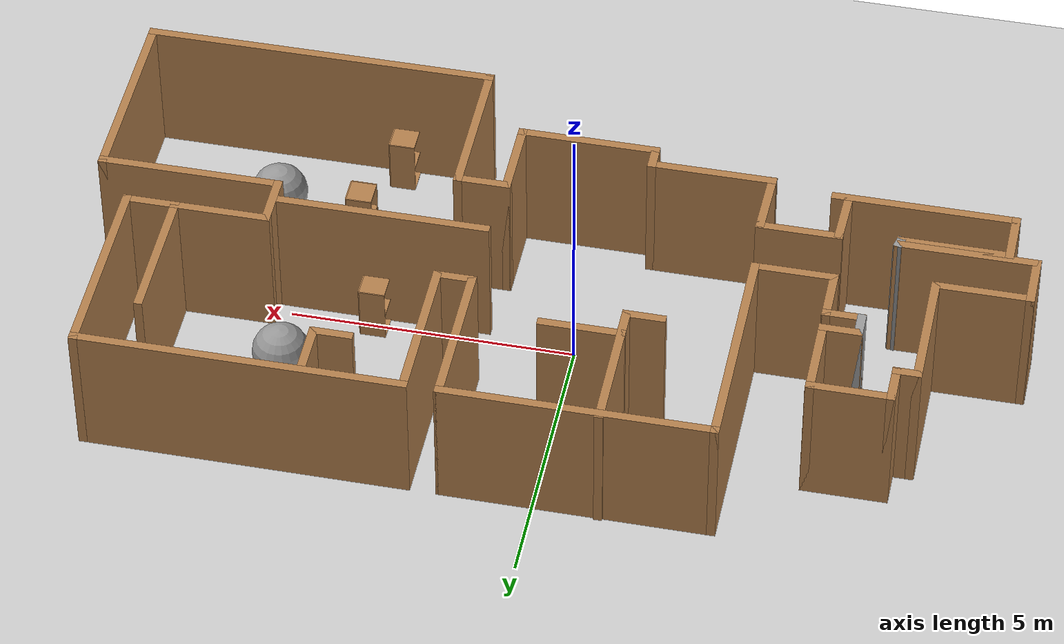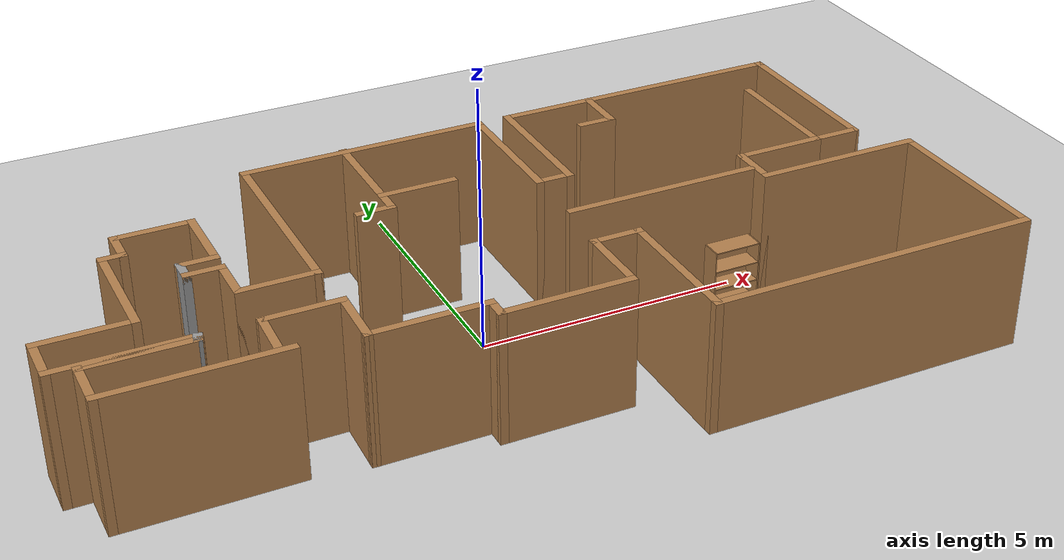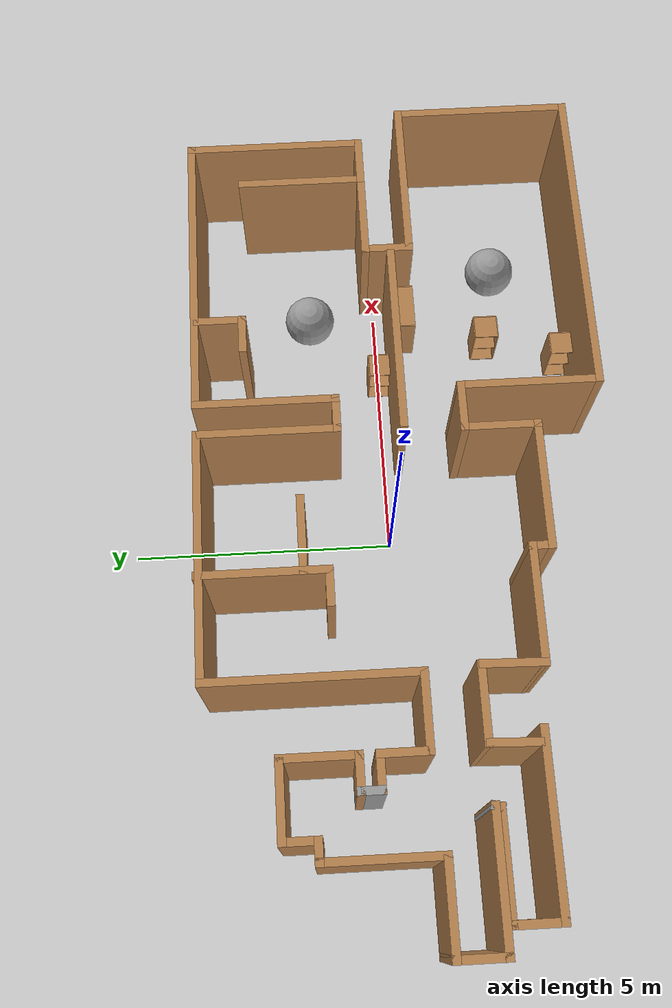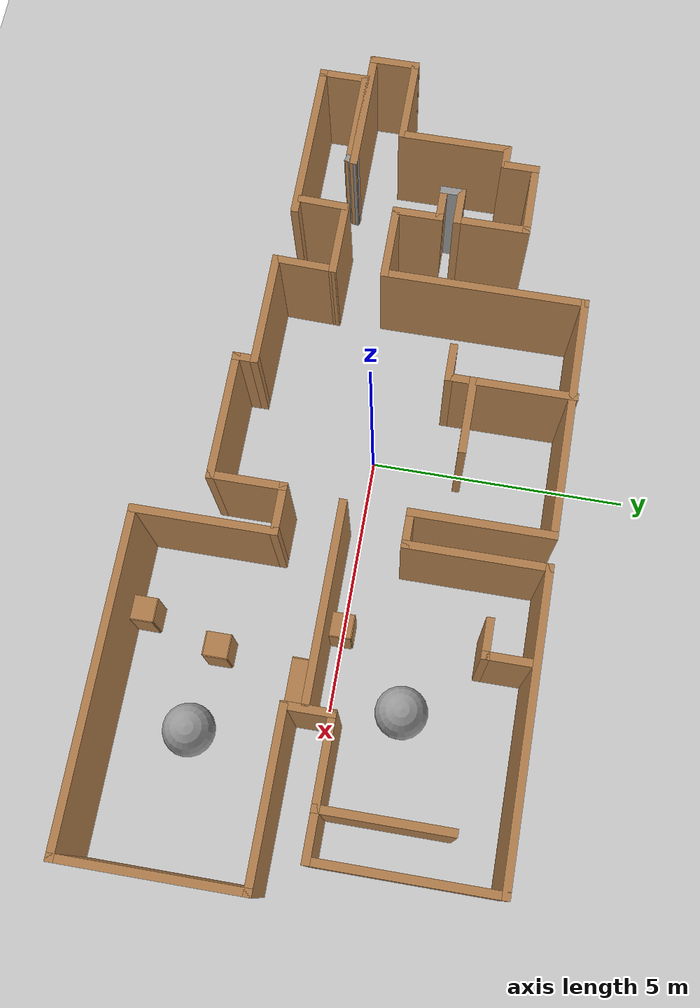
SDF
<sdf version="1.6">
 <world name="default">
  <model name="ground_plane">
   <static>1</static>
   <link name="link">
    <collision name="collision">
     <geometry><plane><normal>0 0 1</normal><size>100 100</size></plane></geometry>
     <surface><friction><ode><mu>100</mu><mu2>50</mu2></ode></friction></surface>
    </collision>
    <visual name="visual">
     <cast_shadows>0</cast_shadows>
     <geometry><plane><normal>0 0 1</normal><size>100 100</size></plane></geometry>
     <material>
      <script><uri>file://media/materials/scripts/gazebo.material</uri><name>Gazebo/Grey</name></script>
     </material>
    </visual>
   </link>
  </model>
  <model name="map_8">
   <pose>0.358533 -0.196859 0 0 -0 0</pose>
   <link name="Wall_0">
    <collision name="Wall_0_Collision">
     <geometry><box><size>3.25 0.15 2.5</size></box></geometry>
     <pose>0 0 1.25 0 -0 0</pose>
    </collision>
    <visual name="Wall_0_Visual">
     <pose>0 0 1.25 0 -0 0</pose>
     <geometry><box><size>3.25 0.15 2.5</size></box></geometry>
     <material>
      <script><uri>file://media/materials/scripts/gazebo.material</uri><name>Gazebo/Wood</name></script>
      <ambient>1 1 1 1</ambient>
     </material>
     <meta><layer>0</layer></meta>
    </visual>
    <pose>-6.02588 -2.03852 0 0 -0 3.14159</pose>
   </link>
   <link name="Wall_1">
    <collision name="Wall_1_Collision">
     <geometry><box><size>1 0.15 2.5</size></box></geometry>
     <pose>0 0 1.25 0 -0 0</pose>
    </collision>
    <visual name="Wall_1_Visual">
     <pose>0 0 1.25 0 -0 0</pose>
     <geometry><box><size>1 0.15 2.5</size></box></geometry>
     <material>
      <script><uri>file://media/materials/scripts/gazebo.material</uri><name>Gazebo/Wood</name></script>
      <ambient>1 1 1 1</ambient>
     </material>
     <meta><layer>0</layer></meta>
    </visual>
    <pose>-7.57588 -1.61352 0 0 -0 1.5708</pose>
   </link>
   <link name="Wall_10">
    <collision name="Wall_10_Collision">
     <geometry><box><size>1.5 0.15 2.5</size></box></geometry>
     <pose>0 0 1.25 0 -0 0</pose>
    </collision>
    <visual name="Wall_10_Visual">
     <pose>0 0 1.25 0 -0 0</pose>
     <geometry><box><size>1.5 0.15 2.5</size></box></geometry>
     <material>
      <script><uri>file://media/materials/scripts/gazebo.material</uri><name>Gazebo/Wood</name></script>
      <ambient>1 1 1 1</ambient>
     </material>
     <meta><layer>0</layer></meta>
    </visual>
    <pose>-5.425 2.45807 0 0 -0 0</pose>
   </link>
   <link name="Wall_11">
    <collision name="Wall_11_Collision">
     <geometry><box><size>1.5 0.15 2.5</size></box></geometry>
     <pose>0 0 1.25 0 -0 0</pose>
    </collision>
    <visual name="Wall_11_Visual">
     <pose>0 0 1.25 0 -0 0</pose>
     <geometry><box><size>1.5 0.15 2.5</size></box></geometry>
     <material>
      <script><uri>file://media/materials/scripts/gazebo.material</uri><name>Gazebo/Wood</name></script>
      <ambient>1 1 1 1</ambient>
     </material>
     <meta><layer>0</layer></meta>
    </visual>
    <pose>-4.75 1.78307 0 0 -0 -1.5708</pose>
   </link>
   <link name="Wall_12">
    <collision name="Wall_12_Collision">
     <geometry><box><size>0.75 0.15 2.5</size></box></geometry>
     <pose>0 0 1.25 0 -0 0</pose>
    </collision>
    <visual name="Wall_12_Visual">
     <pose>0 0 1.25 0 -0 0</pose>
     <geometry><box><size>0.75 0.15 2.5</size></box></geometry>
     <material>
      <script><uri>file://media/materials/scripts/gazebo.material</uri><name>Gazebo/Wood</name></script>
      <ambient>1 1 1 1</ambient>
     </material>
     <meta><layer>0</layer></meta>
    </visual>
    <pose>-5.05 1.10807 0 0 -0 3.14159</pose>
   </link>
   <link name="Wall_13">
    <collision name="Wall_13_Collision">
     <geometry><box><size>0.5 0.15 2.5</size></box></geometry>
     <pose>0 0 1.25 0 -0 0</pose>
    </collision>
    <visual name="Wall_13_Visual">
     <pose>0 0 1.25 0 -0 0</pose>
     <geometry><box><size>0.5 0.15 2.5</size></box></geometry>
     <material>
      <script><uri>file://media/materials/scripts/gazebo.material</uri><name>Gazebo/Grey</name></script>
      <ambient>1 1 1 1</ambient>
     </material>
     <meta><layer>0</layer></meta>
    </visual>
    <pose>-5.35 0.933071 0 0 -0 -1.5708</pose>
   </link>
   <link name="Wall_14">
    <collision name="Wall_14_Collision">
     <geometry><box><size>0.75 0.15 2.5</size></box></geometry>
     <pose>0 0 1.25 0 -0 0</pose>
    </collision>
    <visual name="Wall_14_Visual">
     <pose>0 0 1.25 0 -0 0</pose>
     <geometry><box><size>0.75 0.15 2.5</size></box></geometry>
     <material>
      <script><uri>file://media/materials/scripts/gazebo.material</uri><name>Gazebo/Wood</name></script>
      <ambient>1 1 1 1</ambient>
     </material>
     <meta><layer>0</layer></meta>
    </visual>
    <pose>-5.05 0.758071 0 0 -0 0</pose>
   </link>
   <link name="Wall_15">
    <collision name="Wall_15_Collision">
     <geometry><box><size>1 0.15 2.5</size></box></geometry>
     <pose>0 0 1.25 0 -0 0</pose>
    </collision>
    <visual name="Wall_15_Visual">
     <pose>0 0 1.25 0 -0 0</pose>
     <geometry><box><size>1 0.15 2.5</size></box></geometry>
     <material>
      <script><uri>file://media/materials/scripts/gazebo.material</uri><name>Gazebo/Wood</name></script>
      <ambient>1 1 1 1</ambient>
     </material>
     <meta><layer>0</layer></meta>
    </visual>
    <pose>-4.75 0.333071 0 0 -0 -1.5708</pose>
   </link>
   <link name="Wall_16">
    <collision name="Wall_16_Collision">
     <geometry><box><size>1.5 0.15 2.5</size></box></geometry>
     <pose>0 0 1.25 0 -0 0</pose>
    </collision>
    <visual name="Wall_16_Visual">
     <pose>0 0 1.25 0 -0 0</pose>
     <geometry><box><size>1.5 0.15 2.5</size></box></geometry>
     <material>
      <script><uri>file://media/materials/scripts/gazebo.material</uri><name>Gazebo/Wood</name></script>
      <ambient>1 1 1 1</ambient>
     </material>
     <meta><layer>0</layer></meta>
    </visual>
    <pose>-4.075 -0.091929 0 0 -0 0</pose>
   </link>
   <link name="Wall_17">
    <collision name="Wall_17_Collision">
     <geometry><box><size>4 0.15 2.5</size></box></geometry>
     <pose>0 0 1.25 0 -0 0</pose>
    </collision>
    <visual name="Wall_17_Visual">
     <pose>0 0 1.25 0 -0 0</pose>
     <geometry><box><size>4 0.15 2.5</size></box></geometry>
     <material>
      <script><uri>file://media/materials/scripts/gazebo.material</uri><name>Gazebo/Wood</name></script>
      <ambient>1 1 1 1</ambient>
     </material>
     <meta><layer>0</layer></meta>
    </visual>
    <pose>-3.4 1.83307 0 0 -0 1.5708</pose>
   </link>
   <link name="Wall_18">
    <collision name="Wall_18_Collision">
     <geometry><box><size>4.75 0.15 2.5</size></box></geometry>
     <pose>0 0 1.25 0 -0 0</pose>
    </collision>
    <visual name="Wall_18_Visual">
     <pose>0 0 1.25 0 -0 0</pose>
     <geometry><box><size>4.75 0.15 2.5</size></box></geometry>
     <material>
      <script><uri>file://media/materials/scripts/gazebo.material</uri><name>Gazebo/Wood</name></script>
      <ambient>1 1 1 1</ambient>
     </material>
     <meta><layer>0</layer></meta>
    </visual>
    <pose>-1.1 3.75807 0 0 -0 0</pose>
   </link>
   <link name="Wall_19">
    <collision name="Wall_19_Collision">
     <geometry><box><size>2.75 0.15 2.5</size></box></geometry>
     <pose>0 0 1.25 0 -0 0</pose>
    </collision>
    <visual name="Wall_19_Visual">
     <pose>0 0 1.25 0 -0 0</pose>
     <geometry><box><size>2.75 0.15 2.5</size></box></geometry>
     <material>
      <script><uri>file://media/materials/scripts/gazebo.material</uri><name>Gazebo/Wood</name></script>
      <ambient>1 1 1 1</ambient>
     </material>
     <meta><layer>0</layer></meta>
    </visual>
    <pose>1.2 2.45807 0 0 -0 -1.5708</pose>
   </link>
   <link name="Wall_2">
    <collision name="Wall_2_Collision">
     <geometry><box><size>2 0.15 2.5</size></box></geometry>
     <pose>0 0 1.25 0 -0 0</pose>
    </collision>
    <visual name="Wall_2_Visual">
     <pose>0 0 1.25 0 -0 0</pose>
     <geometry><box><size>2 0.15 2.5</size></box></geometry>
     <material>
      <script><uri>file://media/materials/scripts/gazebo.material</uri><name>Gazebo/Wood</name></script>
      <ambient>1 1 1 1</ambient>
     </material>
     <meta><layer>0</layer></meta>
    </visual>
    <pose>-6.65088 -1.18852 0 0 -0 0</pose>
   </link>
   <link name="Wall_20">
    <collision name="Wall_20_Collision">
     <geometry><box><size>0.75 0.15 2.5</size></box></geometry>
     <pose>0 0 1.25 0 -0 0</pose>
    </collision>
    <visual name="Wall_20_Visual">
     <pose>0 0 1.25 0 -0 0</pose>
     <geometry><box><size>0.75 0.15 2.5</size></box></geometry>
     <material>
      <script><uri>file://media/materials/scripts/gazebo.material</uri><name>Gazebo/Wood</name></script>
      <ambient>1 1 1 1</ambient>
     </material>
     <meta><layer>0</layer></meta>
    </visual>
    <pose>1.5 1.15807 0 0 -0 0</pose>
   </link>
   <link name="Wall_21">
    <collision name="Wall_21_Collision">
     <geometry><box><size>2.75 0.15 2.5</size></box></geometry>
     <pose>0 0 1.25 0 -0 0</pose>
    </collision>
    <visual name="Wall_21_Visual">
     <pose>0 0 1.25 0 -0 0</pose>
     <geometry><box><size>2.75 0.15 2.5</size></box></geometry>
     <material>
      <script><uri>file://media/materials/scripts/gazebo.material</uri><name>Gazebo/Wood</name></script>
      <ambient>1 1 1 1</ambient>
     </material>
     <meta><layer>0</layer></meta>
    </visual>
    <pose>1.8 2.45807 0 0 -0 1.5708</pose>
   </link>
   <link name="Wall_22">
    <collision name="Wall_22_Collision">
     <geometry><box><size>5.75 0.15 2.5</size></box></geometry>
     <pose>0 0 1.25 0 -0 0</pose>
    </collision>
    <visual name="Wall_22_Visual">
     <pose>0 0 1.25 0 -0 0</pose>
     <geometry><box><size>5.75 0.15 2.5</size></box></geometry>
     <material>
      <script><uri>file://media/materials/scripts/gazebo.material</uri><name>Gazebo/Wood</name></script>
      <ambient>1 1 1 1</ambient>
     </material>
     <meta><layer>0</layer></meta>
    </visual>
    <pose>4.6 3.75807 0 0 -0 0</pose>
   </link>
   <link name="Wall_23">
    <collision name="Wall_23_Collision">
     <geometry><box><size>3.5 0.15 2.5</size></box></geometry>
     <pose>0 0 1.25 0 -0 0</pose>
    </collision>
    <visual name="Wall_23_Visual">
     <pose>0 0 1.25 0 -0 0</pose>
     <geometry><box><size>3.5 0.15 2.5</size></box></geometry>
     <material>
      <script><uri>file://media/materials/scripts/gazebo.material</uri><name>Gazebo/Wood</name></script>
      <ambient>1 1 1 1</ambient>
     </material>
     <meta><layer>0</layer></meta>
    </visual>
    <pose>7.4 2.08307 0 0 -0 -1.5708</pose>
   </link>
   <link name="Wall_24">
    <collision name="Wall_24_Collision">
     <geometry><box><size>1 0.15 2.5</size></box></geometry>
     <pose>0 0 1.25 0 -0 0</pose>
    </collision>
    <visual name="Wall_24_Visual">
     <pose>0 0 1.25 0 -0 0</pose>
     <geometry><box><size>1 0.15 2.5</size></box></geometry>
     <material>
      <script><uri>file://media/materials/scripts/gazebo.material</uri><name>Gazebo/Wood</name></script>
      <ambient>1 1 1 1</ambient>
     </material>
     <meta><layer>0</layer></meta>
    </visual>
    <pose>6.975 0.408071 0 0 -0 3.14159</pose>
   </link>
   <link name="Wall_25">
    <collision name="Wall_25_Collision">
     <geometry><box><size>2.5 0.15 2.5</size></box></geometry>
     <pose>0 0 1.25 0 -0 0</pose>
    </collision>
    <visual name="Wall_25_Visual">
     <pose>0 0 1.25 0 -0 0</pose>
     <geometry><box><size>2.5 0.15 2.5</size></box></geometry>
     <material>
      <script><uri>file://media/materials/scripts/gazebo.material</uri><name>Gazebo/Wood</name></script>
      <ambient>1 1 1 1</ambient>
     </material>
     <meta><layer>0</layer></meta>
    </visual>
    <pose>6.55 1.58307 0 0 -0 1.5708</pose>
   </link>
   <link name="Wall_27">
    <collision name="Wall_27_Collision">
     <geometry><box><size>1.75 0.15 2.5</size></box></geometry>
     <pose>0 0 1.25 0 -0 0</pose>
    </collision>
    <visual name="Wall_27_Visual">
     <pose>0 0 1.25 0 -0 0</pose>
     <geometry><box><size>1.75 0.15 2.5</size></box></geometry>
     <material>
      <script><uri>file://media/materials/scripts/gazebo.material</uri><name>Gazebo/Wood</name></script>
      <ambient>1 1 1 1</ambient>
     </material>
     <meta><layer>0</layer></meta>
    </visual>
    <pose>5.75 0.408071 0 0 -0 3.14159</pose>
   </link>
   <link name="Wall_28">
    <collision name="Wall_28_Collision">
     <geometry><box><size>1 0.15 2.5</size></box></geometry>
     <pose>0 0 1.25 0 -0 0</pose>
    </collision>
    <visual name="Wall_28_Visual">
     <pose>0 0 1.25 0 -0 0</pose>
     <geometry><box><size>1 0.15 2.5</size></box></geometry>
     <material>
      <script><uri>file://media/materials/scripts/gazebo.material</uri><name>Gazebo/Wood</name></script>
      <ambient>1 1 1 1</ambient>
     </material>
     <meta><layer>0</layer></meta>
    </visual>
    <pose>4.95 -0.016929 0 0 -0 -1.5708</pose>
   </link>
   <link name="Wall_29">
    <collision name="Wall_29_Collision">
     <geometry><box><size>3.25 0.15 2.5</size></box></geometry>
     <pose>0 0 1.25 0 -0 0</pose>
    </collision>
    <visual name="Wall_29_Visual">
     <pose>0 0 1.25 0 -0 0</pose>
     <geometry><box><size>3.25 0.15 2.5</size></box></geometry>
     <material>
      <script><uri>file://media/materials/scripts/gazebo.material</uri><name>Gazebo/Wood</name></script>
      <ambient>1 1 1 1</ambient>
     </material>
     <meta><layer>0</layer></meta>
    </visual>
    <pose>6.5 -0.441929 0 0 -0 0</pose>
   </link>
   <link name="Wall_3">
    <collision name="Wall_3_Collision">
     <geometry><box><size>0.25 0.15 2.5</size></box></geometry>
     <pose>0 0 1.25 0 -0 0</pose>
    </collision>
    <visual name="Wall_3_Visual">
     <pose>0 0 1.25 0 -0 0</pose>
     <geometry><box><size>0.25 0.15 2.5</size></box></geometry>
     <material>
      <script><uri>file://media/materials/scripts/gazebo.material</uri><name>Gazebo/Grey</name></script>
      <ambient>1 1 1 1</ambient>
     </material>
     <meta><layer>0</layer></meta>
    </visual>
    <pose>-5.71294 -1.14023 0 0 -0 1.309</pose>
   </link>
   <link name="Wall_30">
    <collision name="Wall_30_Collision">
     <geometry><box><size>3.5 0.15 2.5</size></box></geometry>
     <pose>0 0 1.25 0 -0 0</pose>
    </collision>
    <visual name="Wall_30_Visual">
     <pose>0 0 1.25 0 -0 0</pose>
     <geometry><box><size>3.5 0.15 2.5</size></box></geometry>
     <material>
      <script><uri>file://media/materials/scripts/gazebo.material</uri><name>Gazebo/Wood</name></script>
      <ambient>1 1 1 1</ambient>
     </material>
     <meta><layer>0</layer></meta>
    </visual>
    <pose>8.05 -2.11693 0 0 -0 -1.5708</pose>
   </link>
   <link name="Wall_31">
    <collision name="Wall_31_Collision">
     <geometry><box><size>6.25 0.15 2.5</size></box></geometry>
     <pose>0 0 1.25 0 -0 0</pose>
    </collision>
    <visual name="Wall_31_Visual">
     <pose>0 0 1.25 0 -0 0</pose>
     <geometry><box><size>6.25 0.15 2.5</size></box></geometry>
     <material>
      <script><uri>file://media/materials/scripts/gazebo.material</uri><name>Gazebo/Wood</name></script>
      <ambient>1 1 1 1</ambient>
     </material>
     <meta><layer>0</layer></meta>
    </visual>
    <pose>5 -3.79193 0 0 -0 3.14159</pose>
   </link>
   <link name="Wall_32">
    <collision name="Wall_32_Collision">
     <geometry><box><size>2.75 0.15 2.5</size></box></geometry>
     <pose>0 0 1.25 0 -0 0</pose>
    </collision>
    <visual name="Wall_32_Visual">
     <pose>0 0 1.25 0 -0 0</pose>
     <geometry><box><size>2.75 0.15 2.5</size></box></geometry>
     <material>
      <script><uri>file://media/materials/scripts/gazebo.material</uri><name>Gazebo/Wood</name></script>
      <ambient>1 1 1 1</ambient>
     </material>
     <meta><layer>0</layer></meta>
    </visual>
    <pose>1.95 -2.49193 0 0 -0 1.5708</pose>
   </link>
   <link name="Wall_33">
    <collision name="Wall_33_Collision">
     <geometry><box><size>1 0.15 2.5</size></box></geometry>
     <pose>0 0 1.25 0 -0 0</pose>
    </collision>
    <visual name="Wall_33_Visual">
     <pose>0 0 1.25 0 -0 0</pose>
     <geometry><box><size>1 0.15 2.5</size></box></geometry>
     <material>
      <script><uri>file://media/materials/scripts/gazebo.material</uri><name>Gazebo/Wood</name></script>
      <ambient>1 1 1 1</ambient>
     </material>
     <meta><layer>0</layer></meta>
    </visual>
    <pose>1.525 -1.19193 0 0 -0 3.14159</pose>
   </link>
   <link name="Wall_34">
    <collision name="Wall_34_Collision">
     <geometry><box><size>1.5 0.15 2.5</size></box></geometry>
     <pose>0 0 1.25 0 -0 0</pose>
    </collision>
    <visual name="Wall_34_Visual">
     <pose>0 0 1.25 0 -0 0</pose>
     <geometry><box><size>1.5 0.15 2.5</size></box></geometry>
     <material>
      <script><uri>file://media/materials/scripts/gazebo.material</uri><name>Gazebo/Wood</name></script>
      <ambient>1 1 1 1</ambient>
     </material>
     <meta><layer>0</layer></meta>
    </visual>
    <pose>1.1 -1.86693 0 0 -0 -1.5708</pose>
   </link>
   <link name="Wall_35">
    <collision name="Wall_35_Collision">
     <geometry><box><size>2.5 0.15 2.5</size></box></geometry>
     <pose>0 0 1.25 0 -0 0</pose>
    </collision>
    <visual name="Wall_35_Visual">
     <pose>0 0 1.25 0 -0 0</pose>
     <geometry><box><size>2.5 0.15 2.5</size></box></geometry>
     <material>
      <script><uri>file://media/materials/scripts/gazebo.material</uri><name>Gazebo/Wood</name></script>
      <ambient>1 1 1 1</ambient>
     </material>
     <meta><layer>0</layer></meta>
    </visual>
    <pose>-0.075 -2.54193 0 0 -0 3.14159</pose>
   </link>
   <link name="Wall_36">
    <collision name="Wall_36_Collision">
     <geometry><box><size>0.5 0.15 2.5</size></box></geometry>
     <pose>0 0 1.25 0 -0 0</pose>
    </collision>
    <visual name="Wall_36_Visual">
     <pose>0 0 1.25 0 -0 0</pose>
     <geometry><box><size>0.5 0.15 2.5</size></box></geometry>
     <material>
      <script><uri>file://media/materials/scripts/gazebo.material</uri><name>Gazebo/Wood</name></script>
      <ambient>1 1 1 1</ambient>
     </material>
     <meta><layer>0</layer></meta>
    </visual>
    <pose>-1.25 -2.36693 0 0 -0 1.5708</pose>
   </link>
   <link name="Wall_37">
    <collision name="Wall_37_Collision">
     <geometry><box><size>2.25 0.15 2.5</size></box></geometry>
     <pose>0 0 1.25 0 -0 0</pose>
    </collision>
    <visual name="Wall_37_Visual">
     <pose>0 0 1.25 0 -0 0</pose>
     <geometry><box><size>2.25 0.15 2.5</size></box></geometry>
     <material>
      <script><uri>file://media/materials/scripts/gazebo.material</uri><name>Gazebo/Wood</name></script>
      <ambient>1 1 1 1</ambient>
     </material>
     <meta><layer>0</layer></meta>
    </visual>
    <pose>-2.3 -2.19193 0 0 -0 3.14159</pose>
   </link>
   <link name="Wall_38">
    <collision name="Wall_38_Collision">
     <geometry><box><size>1.23432 0.15 2.5</size></box></geometry>
     <pose>0 0 1.25 0 -0 0</pose>
    </collision>
    <visual name="Wall_38_Visual">
     <pose>0 0 1.25 0 -0 0</pose>
     <geometry><box><size>1.23432 0.15 2.5</size></box></geometry>
     <material>
      <script><uri>file://media/materials/scripts/gazebo.material</uri><name>Gazebo/Wood</name></script>
      <ambient>1 1 1 1</ambient>
     </material>
     <meta><layer>0</layer></meta>
    </visual>
    <pose>-3.3367 -1.64993 0 0 -0 1.54626</pose>
   </link>
   <link name="Wall_39">
    <collision name="Wall_39_Collision">
     <geometry><box><size>1.5 0.15 2.5</size></box></geometry>
     <pose>0 0 1.25 0 -0 0</pose>
    </collision>
    <visual name="Wall_39_Visual">
     <pose>0 0 1.25 0 -0 0</pose>
     <geometry><box><size>1.5 0.15 2.5</size></box></geometry>
     <material>
      <script><uri>file://media/materials/scripts/gazebo.material</uri><name>Gazebo/Wood</name></script>
      <ambient>1 1 1 1</ambient>
     </material>
     <meta><layer>0</layer></meta>
    </visual>
    <pose>-3.9984 -1.08133 0 0 -0 3.14159</pose>
   </link>
   <link name="Wall_4">
    <collision name="Wall_4_Collision">
     <geometry><box><size>2.5 0.15 2.5</size></box></geometry>
     <pose>0 0 1.25 0 -0 0</pose>
    </collision>
    <visual name="Wall_4_Visual">
     <pose>0 0 1.25 0 -0 0</pose>
     <geometry><box><size>2.5 0.15 2.5</size></box></geometry>
     <material>
      <script><uri>file://media/materials/scripts/gazebo.material</uri><name>Gazebo/Wood</name></script>
      <ambient>1 1 1 1</ambient>
     </material>
     <meta><layer>0</layer></meta>
    </visual>
    <pose>-6.875 -1.09193 0 0 -0 3.14159</pose>
   </link>
   <link name="Wall_40">
    <collision name="Wall_40_Collision">
     <geometry><box><size>0.984422 0.15 2.5</size></box></geometry>
     <pose>0 0 1.25 0 -0 0</pose>
    </collision>
    <visual name="Wall_40_Visual">
     <pose>0 0 1.25 0 -0 0</pose>
     <geometry><box><size>0.984422 0.15 2.5</size></box></geometry>
     <material>
      <script><uri>file://media/materials/scripts/gazebo.material</uri><name>Gazebo/Wood</name></script>
      <ambient>1 1 1 1</ambient>
     </material>
     <meta><layer>0</layer></meta>
    </visual>
    <pose>-4.6867 -1.52493 0 0 -0 -1.60268</pose>
   </link>
   <link name="Wall_42">
    <collision name="Wall_42_Collision">
     <geometry><box><size>2.5 0.15 2.5</size></box></geometry>
     <pose>0 0 1.25 0 -0 0</pose>
    </collision>
    <visual name="Wall_42_Visual">
     <pose>0 0 1.25 0 -0 0</pose>
     <geometry><box><size>2.5 0.15 2.5</size></box></geometry>
     <material>
      <script><uri>file://media/materials/scripts/gazebo.material</uri><name>Gazebo/Wood</name></script>
      <ambient>1 1 1 1</ambient>
     </material>
     <meta><layer>0</layer></meta>
    </visual>
    <pose>-1.49184 2.61693 0 0 -0 -1.5708</pose>
   </link>
   <link name="Wall_43">
    <collision name="Wall_43_Collision">
     <geometry><box><size>0.75 0.15 2.5</size></box></geometry>
     <pose>0 0 1.25 0 -0 0</pose>
    </collision>
    <visual name="Wall_43_Visual">
     <pose>0 0 1.25 0 -0 0</pose>
     <geometry><box><size>0.75 0.15 2.5</size></box></geometry>
     <material>
      <script><uri>file://media/materials/scripts/gazebo.material</uri><name>Gazebo/Wood</name></script>
      <ambient>1 1 1 1</ambient>
     </material>
     <meta><layer>0</layer></meta>
    </visual>
    <pose>-1.79184 1.44193 0 0 -0 3.14159</pose>
   </link>
   <link name="Wall_45">
    <collision name="Wall_45_Collision">
     <geometry><box><size>1.5 0.15 2.5</size></box></geometry>
     <pose>0 0 1.25 0 -0 0</pose>
    </collision>
    <visual name="Wall_45_Visual">
     <pose>0 0 1.25 0 -0 0</pose>
     <geometry><box><size>1.5 0.15 2.5</size></box></geometry>
     <material>
      <script><uri>file://media/materials/scripts/gazebo.material</uri><name>Gazebo/Wood</name></script>
      <ambient>1 1 1 1</ambient>
     </material>
     <meta><layer>0</layer></meta>
    </visual>
    <pose>-0.816842 1.90125 0 0 -0 0</pose>
   </link>
   <link name="Wall_47">
    <collision name="Wall_47_Collision">
     <geometry><box><size>1 0.15 2.5</size></box></geometry>
     <pose>0 0 1.25 0 -0 0</pose>
    </collision>
    <visual name="Wall_47_Visual">
     <pose>0 0 1.25 0 -0 0</pose>
     <geometry><box><size>1 0.15 2.5</size></box></geometry>
     <material>
      <script><uri>file://media/materials/scripts/gazebo.material</uri><name>Gazebo/Wood</name></script>
      <ambient>1 1 1 1</ambient>
     </material>
     <meta><layer>0</layer></meta>
    </visual>
    <pose>3.52821 3.27612 0 0 -0 -1.5708</pose>
   </link>
   <link name="Wall_48">
    <collision name="Wall_48_Collision">
     <geometry><box><size>0.75 0.15 2.5</size></box></geometry>
     <pose>0 0 1.25 0 -0 0</pose>
    </collision>
    <visual name="Wall_48_Visual">
     <pose>0 0 1.25 0 -0 0</pose>
     <geometry><box><size>0.75 0.15 2.5</size></box></geometry>
     <material>
      <script><uri>file://media/materials/scripts/gazebo.material</uri><name>Gazebo/Wood</name></script>
      <ambient>1 1 1 1</ambient>
     </material>
     <meta><layer>0</layer></meta>
    </visual>
    <pose>3.22821 2.85112 0 0 -0 3.14159</pose>
   </link>
   <link name="Wall_5">
    <collision name="Wall_5_Collision">
     <geometry><box><size>1 0.15 2.5</size></box></geometry>
     <pose>0 0 1.25 0 -0 0</pose>
    </collision>
    <visual name="Wall_5_Visual">
     <pose>0 0 1.25 0 -0 0</pose>
     <geometry><box><size>1 0.15 2.5</size></box></geometry>
     <material>
      <script><uri>file://media/materials/scripts/gazebo.material</uri><name>Gazebo/Wood</name></script>
      <ambient>1 1 1 1</ambient>
     </material>
     <meta><layer>0</layer></meta>
    </visual>
    <pose>-8.05 -0.666929 0 0 -0 1.5708</pose>
   </link>
   <link name="Wall_50">
    <collision name="Wall_50_Collision">
     <geometry><box><size>3.75 0.15 2.5</size></box></geometry>
     <pose>0 0 1.25 0 -0 0</pose>
    </collision>
    <visual name="Wall_50_Visual">
     <pose>0 0 1.25 0 -0 0</pose>
     <geometry><box><size>3.75 0.15 2.5</size></box></geometry>
     <material>
      <script><uri>file://media/materials/scripts/gazebo.material</uri><name>Gazebo/Wood</name></script>
      <ambient>1 1 1 1</ambient>
     </material>
     <meta><layer>0</layer></meta>
    </visual>
    <pose>3.03162 -0.076112 0 0 -0 3.14159</pose>
   </link>
   <link name="Wall_6">
    <collision name="Wall_6_Collision">
     <geometry><box><size>1.75 0.15 2.5</size></box></geometry>
     <pose>0 0 1.25 0 -0 0</pose>
    </collision>
    <visual name="Wall_6_Visual">
     <pose>0 0 1.25 0 -0 0</pose>
     <geometry><box><size>1.75 0.15 2.5</size></box></geometry>
     <material>
      <script><uri>file://media/materials/scripts/gazebo.material</uri><name>Gazebo/Wood</name></script>
      <ambient>1 1 1 1</ambient>
     </material>
     <meta><layer>0</layer></meta>
    </visual>
    <pose>-7.25 -0.241929 0 0 -0 0</pose>
   </link>
   <link name="Wall_7">
    <collision name="Wall_7_Collision">
     <geometry><box><size>2.25 0.15 2.5</size></box></geometry>
     <pose>0 0 1.25 0 -0 0</pose>
    </collision>
    <visual name="Wall_7_Visual">
     <pose>0 0 1.25 0 -0 0</pose>
     <geometry><box><size>2.25 0.15 2.5</size></box></geometry>
     <material>
      <script><uri>file://media/materials/scripts/gazebo.material</uri><name>Gazebo/Wood</name></script>
      <ambient>1 1 1 1</ambient>
     </material>
     <meta><layer>0</layer></meta>
    </visual>
    <pose>-6.45 0.808071 0 0 -0 1.5708</pose>
   </link>
   <link name="Wall_8">
    <collision name="Wall_8_Collision">
     <geometry><box><size>0.5 0.15 2.5</size></box></geometry>
     <pose>0 0 1.25 0 -0 0</pose>
    </collision>
    <visual name="Wall_8_Visual">
     <pose>0 0 1.25 0 -0 0</pose>
     <geometry><box><size>0.5 0.15 2.5</size></box></geometry>
     <material>
      <script><uri>file://media/materials/scripts/gazebo.material</uri><name>Gazebo/Wood</name></script>
      <ambient>1 1 1 1</ambient>
     </material>
     <meta><layer>0</layer></meta>
    </visual>
    <pose>-6.275 1.85807 0 0 -0 0</pose>
   </link>
   <link name="Wall_9">
    <collision name="Wall_9_Collision">
     <geometry><box><size>0.75 0.15 2.5</size></box></geometry>
     <pose>0 0 1.25 0 -0 0</pose>
    </collision>
    <visual name="Wall_9_Visual">
     <pose>0 0 1.25 0 -0 0</pose>
     <geometry><box><size>0.75 0.15 2.5</size></box></geometry>
     <material>
      <script><uri>file://media/materials/scripts/gazebo.material</uri><name>Gazebo/Wood</name></script>
      <ambient>1 1 1 1</ambient>
     </material>
     <meta><layer>0</layer></meta>
    </visual>
    <pose>-6.1 2.15807 0 0 -0 1.5708</pose>
   </link>
   <static>1</static>
  </model>
  <model name="unit_sphere">
   <pose>4.85045 1.35636 0.5 0 -0 0</pose>
   <link name="link">
    <inertial>
     <mass>1</mass>
     <inertia><ixx>0.1</ixx><ixy>0</ixy><ixz>0</ixz><iyy>0.1</iyy><iyz>0</iyz><izz>0.1</izz></inertia>
    </inertial>
    <collision name="collision"><geometry><sphere><radius>0.5</radius></sphere></geometry></collision>
    <visual name="visual">
     <geometry><sphere><radius>0.5</radius></sphere></geometry>
     <material>
      <script><name>Gazebo/Grey</name><uri>file://media/materials/scripts/gazebo.material</uri></script>
     </material>
    </visual>
   </link>
  </model>
  <model name="unit_sphere_0">
   <pose>5.81053 -2.47605 0.5 0 -0 0</pose>
   <link name="link">
    <inertial>
     <mass>1</mass>
     <inertia><ixx>0.1</ixx><ixy>0</ixy><ixz>0</ixz><iyy>0.1</iyy><iyz>0</iyz><izz>0.1</izz></inertia>
    </inertial>
    <collision name="collision"><geometry><sphere><radius>0.5</radius></sphere></geometry></collision>
    <visual name="visual">
     <geometry><sphere><radius>0.5</radius></sphere></geometry>
     <material>
      <script><name>Gazebo/Grey</name><uri>file://media/materials/scripts/gazebo.material</uri></script>
     </material>
    </visual>
   </link>
  </model>
  <model name="bookshelf">
   <static>1</static>
   <link name="link">
    <inertial><mass>1</mass></inertial>
    <collision name="back">
     <pose>0 0.005 0.6 0 -0 0</pose>
     <geometry><box><size>0.9 0.01 1.2</size></box></geometry>
    </collision>
    <visual name="visual1">
     <pose>0 0.005 0.6 0 -0 0</pose>
     <geometry><box><size>0.9 0.01 1.2</size></box></geometry>
     <material>
      <script><uri>file://media/materials/scripts/gazebo.material</uri><name>Gazebo/Wood</name></script>
     </material>
    </visual>
    <collision name="left_side">
     <pose>0.45 -0.195 0.6 0 -0 0</pose>
     <geometry><box><size>0.02 0.4 1.2</size></box></geometry>
    </collision>
    <visual name="visual2">
     <pose>0.45 -0.195 0.6 0 -0 0</pose>
     <geometry><box><size>0.02 0.4 1.2</size></box></geometry>
     <material>
      <script><uri>file://media/materials/scripts/gazebo.material</uri><name>Gazebo/Wood</name></script>
     </material>
    </visual>
    <collision name="right_side">
     <pose>-0.45 -0.195 0.6 0 -0 0</pose>
     <geometry><box><size>0.02 0.4 1.2</size></box></geometry>
    </collision>
    <visual name="visual3">
     <pose>-0.45 -0.195 0.6 0 -0 0</pose>
     <geometry><box><size>0.02 0.4 1.2</size></box></geometry>
     <material>
      <script><uri>file://media/materials/scripts/gazebo.material</uri><name>Gazebo/Wood</name></script>
     </material>
    </visual>
    <collision name="bottom">
     <pose>0 -0.195 0.03 0 -0 0</pose>
     <geometry><box><size>0.88 0.4 0.06</size></box></geometry>
    </collision>
    <visual name="visual4">
     <pose>0 -0.195 0.03 0 -0 0</pose>
     <geometry><box><size>0.88 0.4 0.06</size></box></geometry>
     <material>
      <script><uri>file://media/materials/scripts/gazebo.material</uri><name>Gazebo/Wood</name></script>
     </material>
    </visual>
    <collision name="top">
     <pose>0 -0.195 1.19 0 -0 0</pose>
     <geometry><box><size>0.88 0.4 0.02</size></box></geometry>
    </collision>
    <visual name="visual5">
     <pose>0 -0.195 1.19 0 -0 0</pose>
     <geometry><box><size>0.88 0.4 0.02</size></box></geometry>
     <material>
      <script><uri>file://media/materials/scripts/gazebo.material</uri><name>Gazebo/Wood</name></script>
     </material>
    </visual>
    <collision name="low_shelf">
     <pose>0 -0.195 0.43 0 -0 0</pose>
     <geometry><box><size>0.88 0.4 0.02</size></box></geometry>
    </collision>
    <visual name="visual6">
     <pose>0 -0.195 0.43 0 -0 0</pose>
     <geometry><box><size>0.88 0.4 0.02</size></box></geometry>
     <material>
      <script><uri>file://media/materials/scripts/gazebo.material</uri><name>Gazebo/Wood</name></script>
     </material>
    </visual>
    <collision name="high_shelf">
     <pose>0 -0.195 0.8 0 -0 0</pose>
     <geometry><box><size>0.88 0.4 0.02</size></box></geometry>
    </collision>
    <visual name="visual7">
     <pose>0 -0.195 0.8 0 -0 0</pose>
     <geometry><box><size>0.88 0.4 0.02</size></box></geometry>
     <material>
      <script><uri>file://media/materials/scripts/gazebo.material</uri><name>Gazebo/Wood</name></script>
     </material>
    </visual>
   </link>
   <pose>4.71993 -0.372805 0 0 -0 0</pose>
  </model>
  <model name="cabinet_1">
   <static>1</static>
   <link name="cabinet_bottom_plate">
    <inertial>
     <pose>0 0 -1 0 -0 0</pose>
     <inertia><ixx>2.05</ixx><ixy>0</ixy><ixz>0</ixz><iyy>2.05</iyy><iyz>0</iyz><izz>2.05</izz></inertia>
     <mass>25</mass>
    </inertial>
    <collision name="cabinet_bottom_plate_geom">
     <pose>0 0 0.01 0 -0 0</pose>
     <geometry><box><size>0.45 0.45 0.02</size></box></geometry>
    </collision>
    <visual name="cabinet_bottom_plate_geom_visual">
     <pose>0 0 0.01 0 -0 0</pose>
     <geometry><box><size>0.45 0.45 0.02</size></box></geometry>
     <material>
      <script><uri>file://media/materials/scripts/gazebo.material</uri><name>Gazebo/Wood</name></script>
     </material>
    </visual>
    <collision name="cabinet_bottom_plate_geom_cabinet_back_plate">
     <pose>0.235 0 0.51 0 -0 0</pose>
     <geometry><box><size>0.02 0.45 1.02</size></box></geometry>
    </collision>
    <visual name="cabinet_bottom_plate_geom_cabinet_back_plate_visual">
     <pose>0.235 0 0.51 0 -0 0</pose>
     <geometry><box><size>0.02 0.45 1.02</size></box></geometry>
     <material>
      <script><uri>file://media/materials/scripts/gazebo.material</uri><name>Gazebo/Wood</name></script>
     </material>
    </visual>
    <collision name="cabinet_bottom_plate_geom_cabinet_left_plate">
     <pose>0 0.235 0.51 0 -0 0</pose>
     <geometry><box><size>0.45 0.02 1.02</size></box></geometry>
    </collision>
    <visual name="cabinet_bottom_plate_geom_cabinet_left_plate_visual">
     <pose>0 0.235 0.51 0 -0 0</pose>
     <geometry><box><size>0.45 0.02 1.02</size></box></geometry>
     <material>
      <script><uri>file://media/materials/scripts/gazebo.material</uri><name>Gazebo/Wood</name></script>
     </material>
    </visual>
    <collision name="cabinet_bottom_plate_geom_cabinet_middle_plate">
     <pose>0 0 0.51 0 -0 0</pose>
     <geometry><box><size>0.45 0.45 0.02</size></box></geometry>
    </collision>
    <visual name="cabinet_bottom_plate_geom_cabinet_middle_plate_visual">
     <pose>0 0 0.51 0 -0 0</pose>
     <geometry><box><size>0.45 0.45 0.02</size></box></geometry>
     <material>
      <script><uri>file://media/materials/scripts/gazebo.material</uri><name>Gazebo/Wood</name></script>
     </material>
    </visual>
    <collision name="cabinet_bottom_plate_geom_cabinet_right_plate">
     <pose>0 -0.235 0.51 0 -0 0</pose>
     <geometry><box><size>0.45 0.02 1.02</size></box></geometry>
    </collision>
    <visual name="cabinet_bottom_plate_geom_cabinet_right_plate_visual">
     <pose>0 -0.235 0.51 0 -0 0</pose>
     <geometry><box><size>0.45 0.02 1.02</size></box></geometry>
     <material>
      <script><uri>file://media/materials/scripts/gazebo.material</uri><name>Gazebo/Wood</name></script>
     </material>
    </visual>
    <collision name="cabinet_bottom_plate_geom_cabinet_top_plate">
     <pose>0 0 1.01 0 -0 0</pose>
     <geometry><box><size>0.45 0.45 0.02</size></box></geometry>
    </collision>
    <visual name="cabinet_bottom_plate_geom_cabinet_top_plate_visual">
     <pose>0 0 1.01 0 -0 0</pose>
     <geometry><box><size>0.45 0.45 0.02</size></box></geometry>
     <material>
      <script><uri>file://media/materials/scripts/gazebo.material</uri><name>Gazebo/Wood</name></script>
     </material>
    </visual>
   </link>
   <pose>3.50548 -0.015463 0 0 -0 0</pose>
  </model>
  <model name="cabinet_2">
   <static>1</static>
   <link name="cabinet_bottom_plate">
    <inertial>
     <pose>0 0 -1 0 -0 0</pose>
     <inertia><ixx>2.05</ixx><ixy>0</ixy><ixz>0</ixz><iyy>2.05</iyy><iyz>0</iyz><izz>2.05</izz></inertia>
     <mass>25</mass>
    </inertial>
    <collision name="cabinet_bottom_plate_geom">
     <pose>0 0 0.01 0 -0 0</pose>
     <geometry><box><size>0.45 0.45 0.02</size></box></geometry>
    </collision>
    <visual name="cabinet_bottom_plate_geom_visual">
     <pose>0 0 0.01 0 -0 0</pose>
     <geometry><box><size>0.45 0.45 0.02</size></box></geometry>
     <material>
      <script><uri>file://media/materials/scripts/gazebo.material</uri><name>Gazebo/Wood</name></script>
     </material>
    </visual>
    <collision name="cabinet_bottom_plate_geom_cabinet_back_plate">
     <pose>0.235 0 0.51 0 -0 0</pose>
     <geometry><box><size>0.02 0.45 1.02</size></box></geometry>
    </collision>
    <visual name="cabinet_bottom_plate_geom_cabinet_back_plate_visual">
     <pose>0.235 0 0.51 0 -0 0</pose>
     <geometry><box><size>0.02 0.45 1.02</size></box></geometry>
     <material>
      <script><uri>file://media/materials/scripts/gazebo.material</uri><name>Gazebo/Wood</name></script>
     </material>
    </visual>
    <collision name="cabinet_bottom_plate_geom_cabinet_left_plate">
     <pose>0 0.235 0.51 0 -0 0</pose>
     <geometry><box><size>0.45 0.02 1.02</size></box></geometry>
    </collision>
    <visual name="cabinet_bottom_plate_geom_cabinet_left_plate_visual">
     <pose>0 0.235 0.51 0 -0 0</pose>
     <geometry><box><size>0.45 0.02 1.02</size></box></geometry>
     <material>
      <script><uri>file://media/materials/scripts/gazebo.material</uri><name>Gazebo/Wood</name></script>
     </material>
    </visual>
    <collision name="cabinet_bottom_plate_geom_cabinet_middle_plate">
     <pose>0 0 0.51 0 -0 0</pose>
     <geometry><box><size>0.45 0.45 0.02</size></box></geometry>
    </collision>
    <visual name="cabinet_bottom_plate_geom_cabinet_middle_plate_visual">
     <pose>0 0 0.51 0 -0 0</pose>
     <geometry><box><size>0.45 0.45 0.02</size></box></geometry>
     <material>
      <script><uri>file://media/materials/scripts/gazebo.material</uri><name>Gazebo/Wood</name></script>
     </material>
    </visual>
    <collision name="cabinet_bottom_plate_geom_cabinet_right_plate">
     <pose>0 -0.235 0.51 0 -0 0</pose>
     <geometry><box><size>0.45 0.02 1.02</size></box></geometry>
    </collision>
    <visual name="cabinet_bottom_plate_geom_cabinet_right_plate_visual">
     <pose>0 -0.235 0.51 0 -0 0</pose>
     <geometry><box><size>0.45 0.02 1.02</size></box></geometry>
     <material>
      <script><uri>file://media/materials/scripts/gazebo.material</uri><name>Gazebo/Wood</name></script>
     </material>
    </visual>
    <collision name="cabinet_bottom_plate_geom_cabinet_top_plate">
     <pose>0 0 1.01 0 -0 0</pose>
     <geometry><box><size>0.45 0.45 0.02</size></box></geometry>
    </collision>
    <visual name="cabinet_bottom_plate_geom_cabinet_top_plate_visual">
     <pose>0 0 1.01 0 -0 0</pose>
     <geometry><box><size>0.45 0.45 0.02</size></box></geometry>
     <material>
      <script><uri>file://media/materials/scripts/gazebo.material</uri><name>Gazebo/Wood</name></script>
     </material>
    </visual>
   </link>
   <pose>3.80795 -3.70815 0 0 -0 0</pose>
  </model>
  <model name="cabinet_5">
   <static>1</static>
   <link name="cabinet_bottom_plate">
    <inertial>
     <pose>0 0 -1 0 -0 0</pose>
     <inertia><ixx>2.05</ixx><ixy>0</ixy><ixz>0</ixz><iyy>2.05</iyy><iyz>0</iyz><izz>2.05</izz></inertia>
     <mass>25</mass>
    </inertial>
    <collision name="cabinet_bottom_plate_geom">
     <pose>0 0 0.01 0 -0 0</pose>
     <geometry><box><size>0.45 0.45 0.02</size></box></geometry>
    </collision>
    <visual name="cabinet_bottom_plate_geom_visual">
     <pose>0 0 0.01 0 -0 0</pose>
     <geometry><box><size>0.45 0.45 0.02</size></box></geometry>
     <material>
      <script><uri>file://media/materials/scripts/gazebo.material</uri><name>Gazebo/Wood</name></script>
     </material>
    </visual>
    <collision name="cabinet_bottom_plate_geom_cabinet_back_plate">
     <pose>0.235 0 0.51 0 -0 0</pose>
     <geometry><box><size>0.02 0.45 1.02</size></box></geometry>
    </collision>
    <visual name="cabinet_bottom_plate_geom_cabinet_back_plate_visual">
     <pose>0.235 0 0.51 0 -0 0</pose>
     <geometry><box><size>0.02 0.45 1.02</size></box></geometry>
     <material>
      <script><uri>file://media/materials/scripts/gazebo.material</uri><name>Gazebo/Wood</name></script>
     </material>
    </visual>
    <collision name="cabinet_bottom_plate_geom_cabinet_left_plate">
     <pose>0 0.235 0.51 0 -0 0</pose>
     <geometry><box><size>0.45 0.02 1.02</size></box></geometry>
    </collision>
    <visual name="cabinet_bottom_plate_geom_cabinet_left_plate_visual">
     <pose>0 0.235 0.51 0 -0 0</pose>
     <geometry><box><size>0.45 0.02 1.02</size></box></geometry>
     <material>
      <script><uri>file://media/materials/scripts/gazebo.material</uri><name>Gazebo/Wood</name></script>
     </material>
    </visual>
    <collision name="cabinet_bottom_plate_geom_cabinet_middle_plate">
     <pose>0 0 0.51 0 -0 0</pose>
     <geometry><box><size>0.45 0.45 0.02</size></box></geometry>
    </collision>
    <visual name="cabinet_bottom_plate_geom_cabinet_middle_plate_visual">
     <pose>0 0 0.51 0 -0 0</pose>
     <geometry><box><size>0.45 0.45 0.02</size></box></geometry>
     <material>
      <script><uri>file://media/materials/scripts/gazebo.material</uri><name>Gazebo/Wood</name></script>
     </material>
    </visual>
    <collision name="cabinet_bottom_plate_geom_cabinet_right_plate">
     <pose>0 -0.235 0.51 0 -0 0</pose>
     <geometry><box><size>0.45 0.02 1.02</size></box></geometry>
    </collision>
    <visual name="cabinet_bottom_plate_geom_cabinet_right_plate_visual">
     <pose>0 -0.235 0.51 0 -0 0</pose>
     <geometry><box><size>0.45 0.02 1.02</size></box></geometry>
     <material>
      <script><uri>file://media/materials/scripts/gazebo.material</uri><name>Gazebo/Wood</name></script>
     </material>
    </visual>
    <collision name="cabinet_bottom_plate_geom_cabinet_top_plate">
     <pose>0 0 1.01 0 -0 0</pose>
     <geometry><box><size>0.45 0.45 0.02</size></box></geometry>
    </collision>
    <visual name="cabinet_bottom_plate_geom_cabinet_top_plate_visual">
     <pose>0 0 1.01 0 -0 0</pose>
     <geometry><box><size>0.45 0.45 0.02</size></box></geometry>
     <material>
      <script><uri>file://media/materials/scripts/gazebo.material</uri><name>Gazebo/Wood</name></script>
     </material>
    </visual>
   </link>
   <pose>4.25001 -2.21 0 0 -0 0</pose>
  </model>
 </world>
</sdf>
